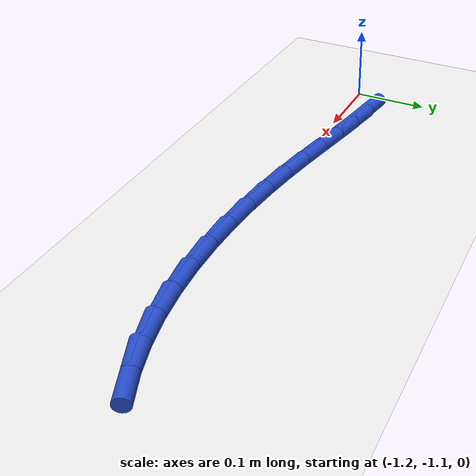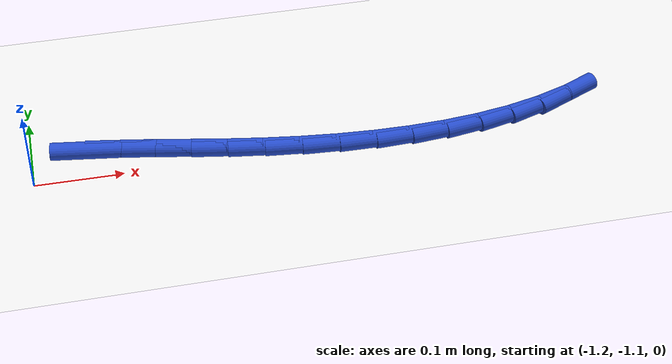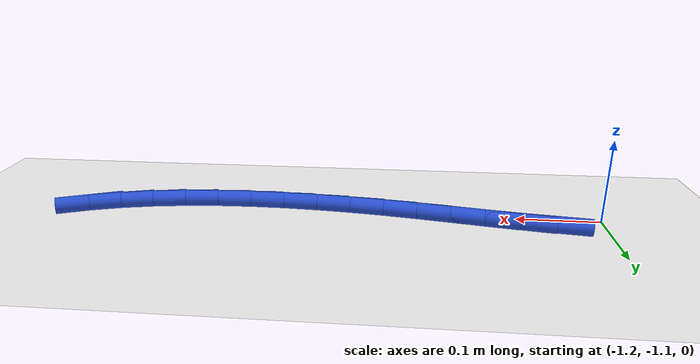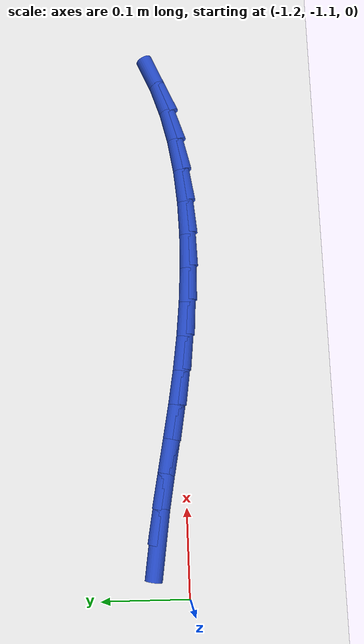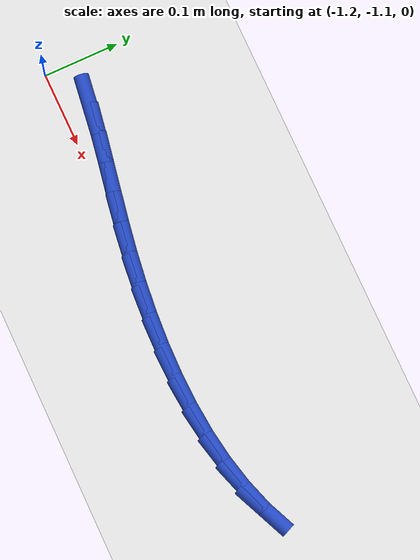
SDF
<sdf version="1.6">
 <world name="default">
  <model name="ground_plane">
   <static>1</static>
   <link name="link">
    <collision name="collision">
     <geometry><plane><normal>0 0 1</normal><size>100 100</size></plane></geometry>
     <surface><friction><ode><mu>100</mu><mu2>50</mu2></ode></friction></surface>
    </collision>
    <visual name="visual">
     <cast_shadows>0</cast_shadows>
     <geometry><plane><normal>0 0 1</normal><size>100 100</size></plane></geometry>
     <material>
      <script><uri>file://media/materials/scripts/gazebo.material</uri><name>Gazebo/WhiteGlow</name></script>
     </material>
    </visual>
   </link>
  </model>
  <model name="line">
   <link name="link_134">
    <pose>-1.1385310848597274 -1.0649703752346056 0.01 0 1.57 -0.13730884667186308</pose>
    <collision name="collision">
     <geometry><cylinder><radius>0.01</radius><length>0.08</length></cylinder></geometry>
    </collision>
    <visual name="visual">
     <material>
      <script><name>Gazebo/Blue</name><uri>file://media/materials/scripts/gazebo.material</uri></script>
     </material>
     <geometry><cylinder><radius>0.01</radius><length>0.08</length></cylinder></geometry>
    </visual>
   </link>
   <link name="link_135">
    <pose>-1.0999429216795233 -1.070302423256297 0.01 0 1.57 -0.16984691105966457</pose>
    <collision name="collision">
     <geometry><cylinder><radius>0.01</radius><length>0.08</length></cylinder></geometry>
    </collision>
    <visual name="visual">
     <material>
      <script><name>Gazebo/Blue</name><uri>file://media/materials/scripts/gazebo.material</uri></script>
     </material>
     <geometry><cylinder><radius>0.01</radius><length>0.08</length></cylinder></geometry>
    </visual>
   </link>
   <link name="link_136">
    <pose>-1.0613034112024196 -1.0769290694131943 0.01 0 1.57 -0.18471793401503978</pose>
    <collision name="collision">
     <geometry><cylinder><radius>0.01</radius><length>0.08</length></cylinder></geometry>
    </collision>
    <visual name="visual">
     <material>
      <script><name>Gazebo/Blue</name><uri>file://media/materials/scripts/gazebo.material</uri></script>
     </material>
     <geometry><cylinder><radius>0.01</radius><length>0.08</length></cylinder></geometry>
    </visual>
   </link>
   <link name="link_137">
    <pose>-1.022370115015761 -1.084203674511532 0.01 0 1.57 -0.18229631241362013</pose>
    <collision name="collision">
     <geometry><cylinder><radius>0.01</radius><length>0.08</length></cylinder></geometry>
    </collision>
    <visual name="visual">
     <material>
      <script><name>Gazebo/Blue</name><uri>file://media/materials/scripts/gazebo.material</uri></script>
     </material>
     <geometry><cylinder><radius>0.01</radius><length>0.08</length></cylinder></geometry>
    </visual>
   </link>
   <link name="link_138">
    <pose>-0.9829005947068925 -1.0914795993575435 0.01 0 1.57 -0.1633819183186163</pose>
    <collision name="collision">
     <geometry><cylinder><radius>0.01</radius><length>0.08</length></cylinder></geometry>
    </collision>
    <visual name="visual">
     <material>
      <script><name>Gazebo/Blue</name><uri>file://media/materials/scripts/gazebo.material</uri></script>
     </material>
     <geometry><cylinder><radius>0.01</radius><length>0.08</length></cylinder></geometry>
    </visual>
   </link>
   <link name="link_139">
    <pose>-0.9426571631946616 -1.0981137839172392 0.01 0 1.57 -0.13357192224200995</pose>
    <collision name="collision">
     <geometry><cylinder><radius>0.01</radius><length>0.08</length></cylinder></geometry>
    </collision>
    <visual name="visual">
     <material>
      <script><name>Gazebo/Blue</name><uri>file://media/materials/scripts/gazebo.material</uri></script>
     </material>
     <geometry><cylinder><radius>0.01</radius><length>0.08</length></cylinder></geometry>
    </visual>
   </link>
   <link name="link_140">
    <pose>-0.9016208376922408 -1.1036279172617875 0.01 0 1.57 -0.09946931700868746</pose>
    <collision name="collision">
     <geometry><cylinder><radius>0.01</radius><length>0.08</length></cylinder></geometry>
    </collision>
    <visual name="visual">
     <material>
      <script><name>Gazebo/Blue</name><uri>file://media/materials/scripts/gazebo.material</uri></script>
     </material>
     <geometry><cylinder><radius>0.01</radius><length>0.08</length></cylinder></geometry>
    </visual>
   </link>
   <link name="link_141">
    <pose>-0.8600781394839329 -1.1077738235060948 0.01 0 1.57 -0.0609361991131558</pose>
    <collision name="collision">
     <geometry><cylinder><radius>0.01</radius><length>0.08</length></cylinder></geometry>
    </collision>
    <visual name="visual">
     <material>
      <script><name>Gazebo/Blue</name><uri>file://media/materials/scripts/gazebo.material</uri></script>
     </material>
     <geometry><cylinder><radius>0.01</radius><length>0.08</length></cylinder></geometry>
    </visual>
   </link>
   <link name="link_142">
    <pose>-0.8183383113953607 -1.1103204428149003 0.01 0 1.57 -0.01720492848761718</pose>
    <collision name="collision">
     <geometry><cylinder><radius>0.01</radius><length>0.08</length></cylinder></geometry>
    </collision>
    <visual name="visual">
     <material>
      <script><name>Gazebo/Blue</name><uri>file://media/materials/scripts/gazebo.material</uri></script>
     </material>
     <geometry><cylinder><radius>0.01</radius><length>0.08</length></cylinder></geometry>
    </visual>
   </link>
   <link name="link_143">
    <pose>-0.7767105962521507 -1.1110367153529441 0.01 0 1.57 0.03263225853523511</pose>
    <collision name="collision">
     <geometry><cylinder><radius>0.01</radius><length>0.08</length></cylinder></geometry>
    </collision>
    <visual name="visual">
     <material>
      <script><name>Gazebo/Blue</name><uri>file://media/materials/scripts/gazebo.material</uri></script>
     </material>
     <geometry><cylinder><radius>0.01</radius><length>0.08</length></cylinder></geometry>
    </visual>
   </link>
   <link name="link_144">
    <pose>-0.7355042368799257 -1.109691581284967 0.01 0 1.57 0.08963029285776934</pose>
    <collision name="collision">
     <geometry><cylinder><radius>0.01</radius><length>0.08</length></cylinder></geometry>
    </collision>
    <visual name="visual">
     <material>
      <script><name>Gazebo/Blue</name><uri>file://media/materials/scripts/gazebo.material</uri></script>
     </material>
     <geometry><cylinder><radius>0.01</radius><length>0.08</length></cylinder></geometry>
    </visual>
   </link>
   <link name="link_145">
    <pose>-0.6950284761043104 -1.106053980775707 0.01 0 1.57 0.15497853304422593</pose>
    <collision name="collision">
     <geometry><cylinder><radius>0.01</radius><length>0.08</length></cylinder></geometry>
    </collision>
    <visual name="visual">
     <material>
      <script><name>Gazebo/Blue</name><uri>file://media/materials/scripts/gazebo.material</uri></script>
     </material>
     <geometry><cylinder><radius>0.01</radius><length>0.08</length></cylinder></geometry>
    </visual>
   </link>
   <link name="link_146">
    <pose>-0.6555925567509286 -1.0998928539899058 0.01 0 1.57 0.2299485559003456</pose>
    <collision name="collision">
     <geometry><cylinder><radius>0.01</radius><length>0.08</length></cylinder></geometry>
    </collision>
    <visual name="visual">
     <material>
      <script><name>Gazebo/Blue</name><uri>file://media/materials/scripts/gazebo.material</uri></script>
     </material>
     <geometry><cylinder><radius>0.01</radius><length>0.08</length></cylinder></geometry>
    </visual>
   </link>
   <link name="link_147">
    <pose>-0.617505721645405 -1.0909771410923024 0.01 0 1.57 0.3157728210671828</pose>
    <collision name="collision">
     <geometry><cylinder><radius>0.01</radius><length>0.08</length></cylinder></geometry>
    </collision>
    <visual name="visual">
     <material>
      <script><name>Gazebo/Blue</name><uri>file://media/materials/scripts/gazebo.material</uri></script>
     </material>
     <geometry><cylinder><radius>0.01</radius><length>0.08</length></cylinder></geometry>
    </visual>
   </link>
   <link name="link_148">
    <pose>-0.5810772136133625 -1.0790757822476362 0.01 0 1.57 0.41341845346995265</pose>
    <collision name="collision">
     <geometry><cylinder><radius>0.01</radius><length>0.08</length></cylinder></geometry>
    </collision>
    <visual name="visual">
     <material>
      <script><name>Gazebo/Blue</name><uri>file://media/materials/scripts/gazebo.material</uri></script>
     </material>
     <geometry><cylinder><radius>0.01</radius><length>0.08</length></cylinder></geometry>
    </visual>
   </link>
  </model>
 </world>
</sdf>
